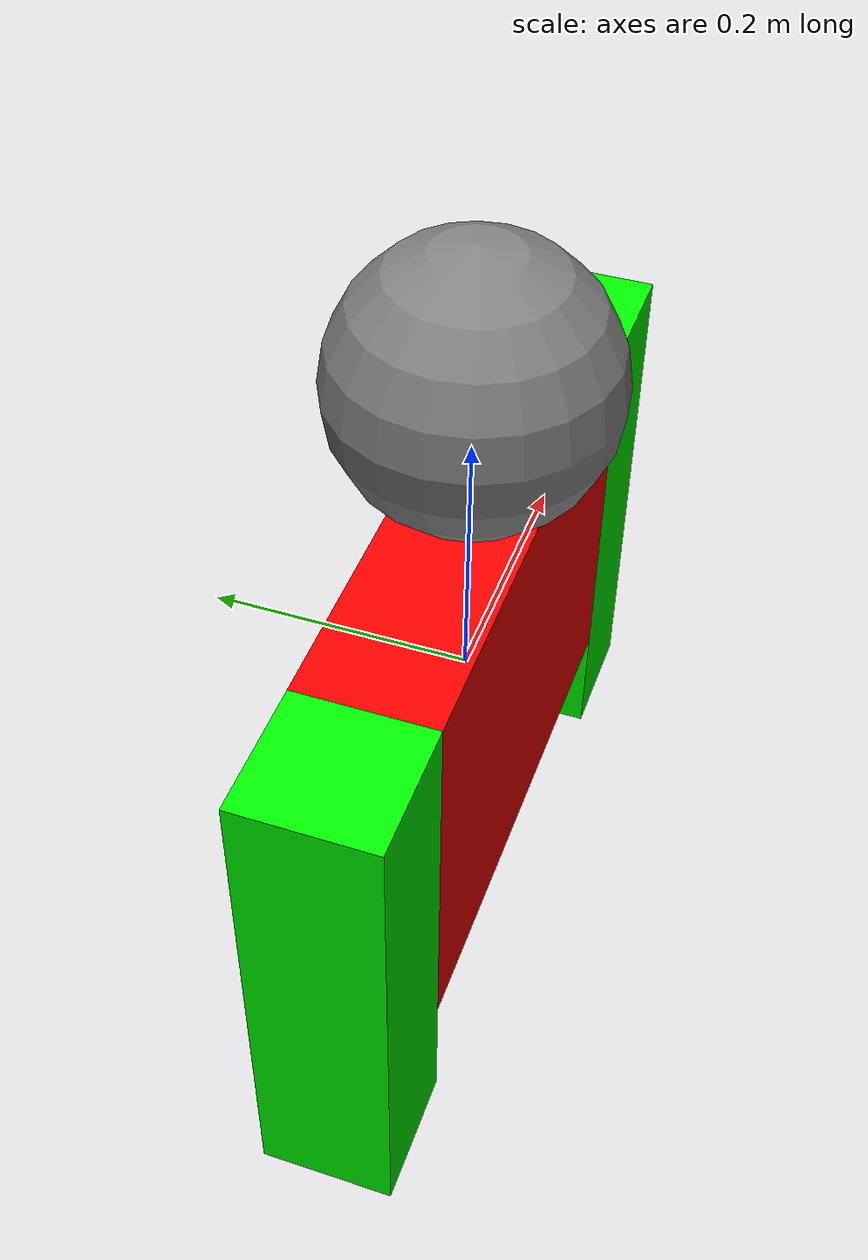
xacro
<?xml version="1.0"?>
<robot name = "simple-joint" xmlns:xacro="http://www.ros.org/wiki/xacro">
    <xacro:property name = "arm_length" value = "0.4"/>
    <xacro:property name = "arm_thickness" value = "0.1"/>
    <xacro:property name = "joint_limit" value = "1.5708"/>
    <xacro:property name = "green" value = "0.0 1.0 0.0 1.0"/>

   <link name="base">
    <visual>
      <geometry>
        <box size="0.4 0.1 0.3"/>
      </geometry>
      <material name="red">
        <color rgba="1.0 0.0 0.0 1.0"/>
      </material>
    </visual>
  </link>

  <link name="head">
    <visual>`
      <geometry>
        <sphere radius="0.1"/>
      </geometry>
      <material name="grey">
        <color rgba="0.5 0.5 0.5 1.0"/>
      </material>
    </visual>
  </link>

  <xacro:macro name="arm" params="name x_pos">
  <link name="${name}">
    <visual>
      <geometry>
        <box size="${arm_thickness} ${arm_thickness} ${arm_length}"/>
      </geometry>
      <material name="green">
        <color rgba="${green}"/>
      </material>
    </visual>
  </link>

  <joint name="base_to_${name}" type="revolute">
    <axis xyz="1 0 0"/>
    <parent link="base"/>
    <child link="${name}"/>
    <origin xyz="${x_pos} 0 -0.05"/>
    <limit lower="-${joint_limit}" upper="${joint_limit}" effort="30" velocity="1.0"/>
  </joint>
</xacro:macro>

<xacro:arm name = "right_arm" x_pos = "0.25"/>
<xacro:arm name = "left_arm" x_pos = "-0.25"/>

  <joint name="base_to_head" type="revolute">
    <axis xyz="0 0 1"/>
    <parent link="base"/>
    <child link="head"/>
    <origin xyz="0 0 0.25"/>
    <limit lower = "-1.5708" upper = "1.5708" effort = "30" velocity = "1.0"/>
  </joint>

</robot>
